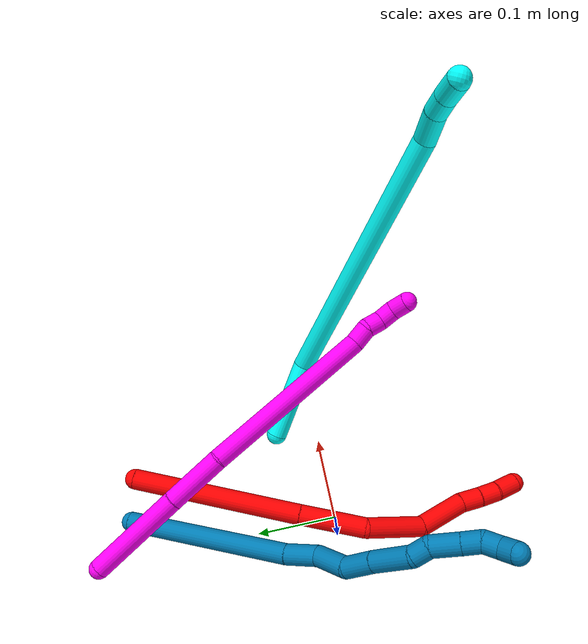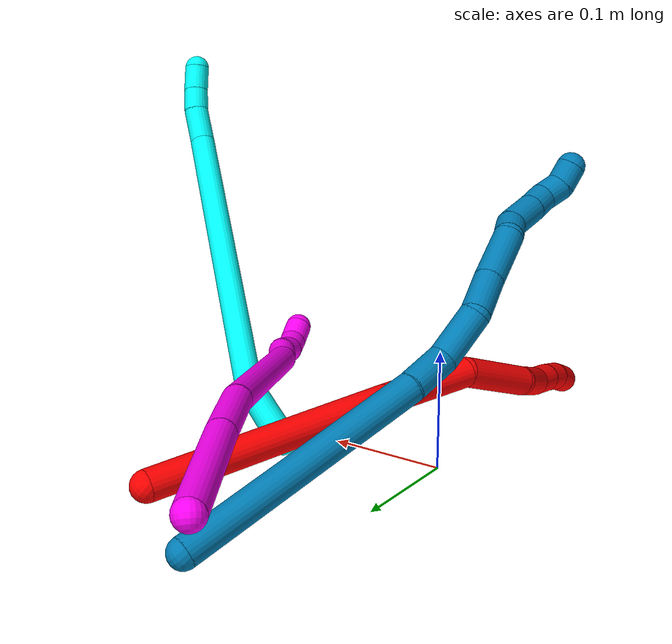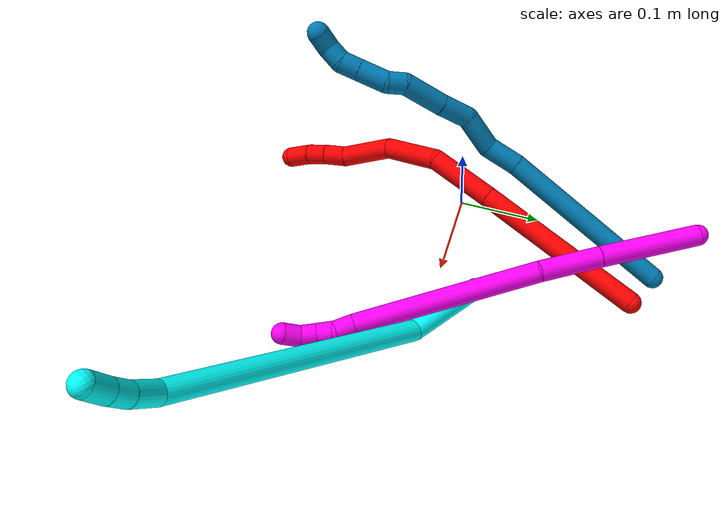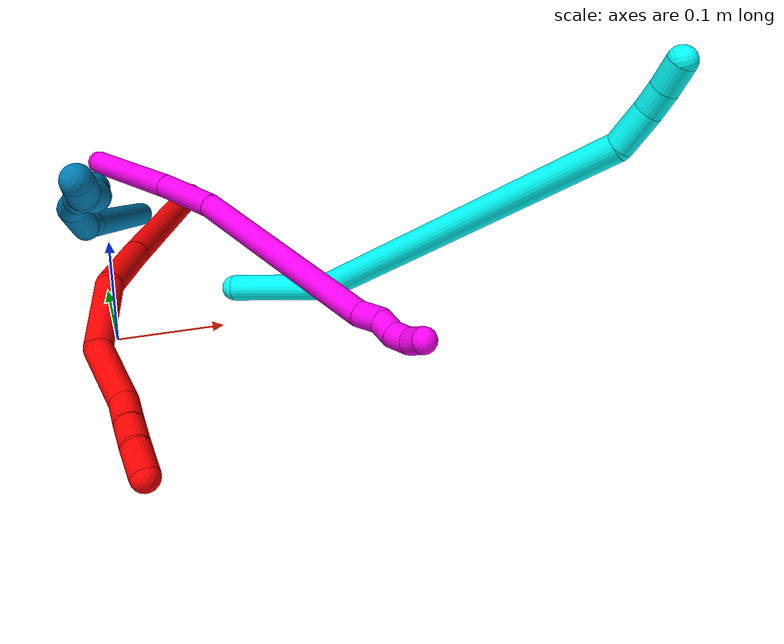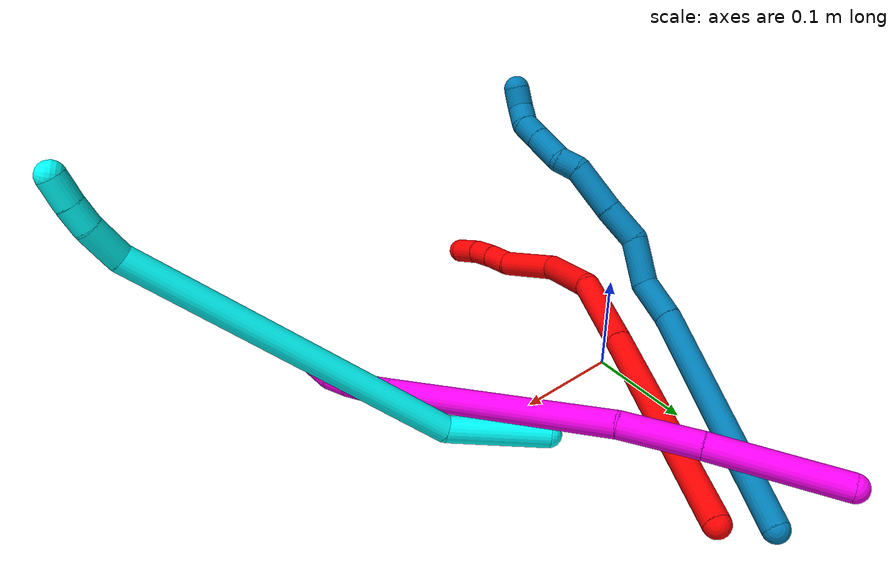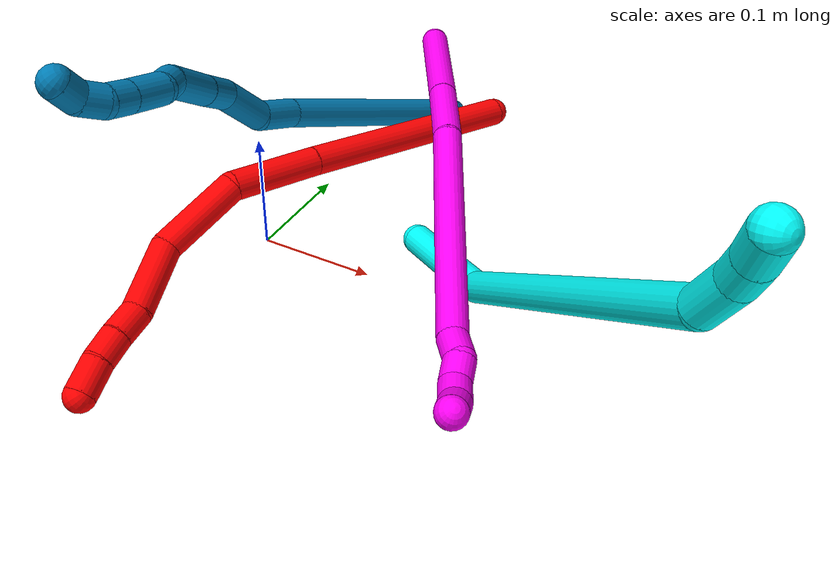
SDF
<sdf version="1.7">
 <world name="default">
  <model name="2">
   <static>0</static>
   <link name="2">
    <collision name="collision-cylinder-e_1_1_4">
     <pose>0.015742 -0.087535 0.054325 1.01536 0.151625 0.084464</pose>
     <geometry><cylinder><radius>0.0125</radius><length>0.208435</length></cylinder></geometry>
     <surface>
      <friction><ode><mu>1.16</mu><mu2>1.16</mu2><slip1>0</slip1><slip2>0</slip2></ode></friction>
      <contact><ode><kp>1e+06</kp><kd>1</kd><max_vel>0</max_vel><min_depth>0.001</min_depth></ode></contact>
     </surface>
    </collision>
    <visual name="visual-cylinder-e_1_1_4">
     <pose>0.015742 -0.087535 0.054325 1.01536 0.151625 0.084464</pose>
     <geometry><cylinder><radius>0.0125</radius><length>0.208435</length></cylinder></geometry>
     <material><ambient>1 0 0 1</ambient></material>
    </visual>
    <collision name="collision-cylinder-e_2_4_5">
     <pose>0.03666 -0.208575 0.130108 1.00117 0.129396 0.070857</pose>
     <geometry><cylinder><radius>0.0125</radius><length>0.080248</length></cylinder></geometry>
     <surface>
      <friction><ode><mu>1.16</mu><mu2>1.16</mu2><slip1>0</slip1><slip2>0</slip2></ode></friction>
      <contact><ode><kp>1e+06</kp><kd>1</kd><max_vel>0</max_vel><min_depth>0.001</min_depth></ode></contact>
     </surface>
    </collision>
    <visual name="visual-cylinder-e_2_4_5">
     <pose>0.03666 -0.208575 0.130108 1.00117 0.129396 0.070857</pose>
     <geometry><cylinder><radius>0.0125</radius><length>0.080248</length></cylinder></geometry>
     <material><ambient>1 0 0 1</ambient></material>
    </visual>
    <collision name="collision-cylinder-e_3_5_6">
     <pose>0.032742 -0.266577 0.177069 0.76525 -0.251779 -0.101781</pose>
     <geometry><cylinder><radius>0.0125</radius><length>0.073024</length></cylinder></geometry>
     <surface>
      <friction><ode><mu>1.16</mu><mu2>1.16</mu2><slip1>0</slip1><slip2>0</slip2></ode></friction>
      <contact><ode><kp>1e+06</kp><kd>1</kd><max_vel>0</max_vel><min_depth>0.001</min_depth></ode></contact>
     </surface>
    </collision>
    <visual name="visual-cylinder-e_3_5_6">
     <pose>0.032742 -0.266577 0.177069 0.76525 -0.251779 -0.101781</pose>
     <geometry><cylinder><radius>0.0125</radius><length>0.073024</length></cylinder></geometry>
     <material><ambient>1 0 0 1</ambient></material>
    </visual>
    <collision name="collision-cylinder-e_4_6_7">
     <pose>0.005946 -0.312896 0.21393 1.09092 -0.623635 -0.386353</pose>
     <geometry><cylinder><radius>0.0125</radius><length>0.060616</length></cylinder></geometry>
     <surface>
      <friction><ode><mu>1.16</mu><mu2>1.16</mu2><slip1>0</slip1><slip2>0</slip2></ode></friction>
      <contact><ode><kp>1e+06</kp><kd>1</kd><max_vel>0</max_vel><min_depth>0.001</min_depth></ode></contact>
     </surface>
    </collision>
    <visual name="visual-cylinder-e_4_6_7">
     <pose>0.005946 -0.312896 0.21393 1.09092 -0.623635 -0.386353</pose>
     <geometry><cylinder><radius>0.0125</radius><length>0.060616</length></cylinder></geometry>
     <material><ambient>1 0 0 1</ambient></material>
    </visual>
    <collision name="collision-cylinder-e_5_7_8">
     <pose>-0.016305 -0.345389 0.230735 1.0988 -0.363103 -0.223857</pose>
     <geometry><cylinder><radius>0.0125</radius><length>0.025628</length></cylinder></geometry>
     <surface>
      <friction><ode><mu>1.16</mu><mu2>1.16</mu2><slip1>0</slip1><slip2>0</slip2></ode></friction>
      <contact><ode><kp>1e+06</kp><kd>1</kd><max_vel>0</max_vel><min_depth>0.001</min_depth></ode></contact>
     </surface>
    </collision>
    <visual name="visual-cylinder-e_5_7_8">
     <pose>-0.016305 -0.345389 0.230735 1.0988 -0.363103 -0.223857</pose>
     <geometry><cylinder><radius>0.0125</radius><length>0.025628</length></cylinder></geometry>
     <material><ambient>1 0 0 1</ambient></material>
    </visual>
    <collision name="collision-cylinder-e_6_8_9">
     <pose>-0.02593 -0.365451 0.241499 1.05568 -0.439422 -0.25894</pose>
     <geometry><cylinder><radius>0.0125</radius><length>0.023854</length></cylinder></geometry>
     <surface>
      <friction><ode><mu>1.16</mu><mu2>1.16</mu2><slip1>0</slip1><slip2>0</slip2></ode></friction>
      <contact><ode><kp>1e+06</kp><kd>1</kd><max_vel>0</max_vel><min_depth>0.001</min_depth></ode></contact>
     </surface>
    </collision>
    <visual name="visual-cylinder-e_6_8_9">
     <pose>-0.02593 -0.365451 0.241499 1.05568 -0.439422 -0.25894</pose>
     <geometry><cylinder><radius>0.0125</radius><length>0.023854</length></cylinder></geometry>
     <material><ambient>1 0 0 1</ambient></material>
    </visual>
    <collision name="collision-cylinder-e_7_9_2">
     <pose>-0.038757 -0.384471 0.253595 0.957275 -0.582341 -0.308533</pose>
     <geometry><cylinder><radius>0.0125</radius><length>0.028194</length></cylinder></geometry>
     <surface>
      <friction><ode><mu>1.16</mu><mu2>1.16</mu2><slip1>0</slip1><slip2>0</slip2></ode></friction>
      <contact><ode><kp>1e+06</kp><kd>1</kd><max_vel>0</max_vel><min_depth>0.001</min_depth></ode></contact>
     </surface>
    </collision>
    <visual name="visual-cylinder-e_7_9_2">
     <pose>-0.038757 -0.384471 0.253595 0.957275 -0.582341 -0.308533</pose>
     <geometry><cylinder><radius>0.0125</radius><length>0.028194</length></cylinder></geometry>
     <material><ambient>1 0 0 1</ambient></material>
    </visual>
    <collision name="collision-sphere-2">
     <pose>-0.04651 -0.394097 0.260373 0 -0 0</pose>
     <geometry><sphere><radius>0.0125</radius></sphere></geometry>
     <surface>
      <friction><ode><mu>1.16</mu><mu2>1.16</mu2><slip1>0</slip1><slip2>0</slip2></ode></friction>
      <contact><ode><kp>1e+06</kp><kd>1</kd><max_vel>0</max_vel><min_depth>0.001</min_depth></ode></contact>
     </surface>
    </collision>
    <visual name="visual-sphere-2">
     <pose>-0.04651 -0.394097 0.260373 0 -0 0</pose>
     <geometry><sphere><radius>0.0125</radius></sphere></geometry>
     <material><ambient>1 0 0 1</ambient></material>
    </visual>
    <collision name="collision-sphere-9">
     <pose>-0.031004 -0.374845 0.246816 0 -0 0</pose>
     <geometry><sphere><radius>0.0125</radius></sphere></geometry>
     <surface>
      <friction><ode><mu>1.16</mu><mu2>1.16</mu2><slip1>0</slip1><slip2>0</slip2></ode></friction>
      <contact><ode><kp>1e+06</kp><kd>1</kd><max_vel>0</max_vel><min_depth>0.001</min_depth></ode></contact>
     </surface>
    </collision>
    <visual name="visual-sphere-9">
     <pose>-0.031004 -0.374845 0.246816 0 -0 0</pose>
     <geometry><sphere><radius>0.0125</radius></sphere></geometry>
     <material><ambient>1 0 0 1</ambient></material>
    </visual>
    <collision name="collision-sphere-4">
     <pose>0.031483 -0.175069 0.108649 0 -0 0</pose>
     <geometry><sphere><radius>0.0125</radius></sphere></geometry>
     <surface>
      <friction><ode><mu>1.16</mu><mu2>1.16</mu2><slip1>0</slip1><slip2>0</slip2></ode></friction>
      <contact><ode><kp>1e+06</kp><kd>1</kd><max_vel>0</max_vel><min_depth>0.001</min_depth></ode></contact>
     </surface>
    </collision>
    <visual name="visual-sphere-4">
     <pose>0.031483 -0.175069 0.108649 0 -0 0</pose>
     <geometry><sphere><radius>0.0125</radius></sphere></geometry>
     <material><ambient>1 0 0 1</ambient></material>
    </visual>
    <collision name="collision-sphere-1">
     <geometry><sphere><radius>0.0125</radius></sphere></geometry>
     <surface>
      <friction><ode><mu>1.16</mu><mu2>1.16</mu2><slip1>0</slip1><slip2>0</slip2></ode></friction>
      <contact><ode><kp>1e+06</kp><kd>1</kd><max_vel>0</max_vel><min_depth>0.001</min_depth></ode></contact>
     </surface>
    </collision>
    <visual name="visual-sphere-1">
     <geometry><sphere><radius>0.0125</radius></sphere></geometry>
     <material><ambient>1 0 0 1</ambient></material>
    </visual>
    <collision name="collision-sphere-8">
     <pose>-0.020856 -0.356058 0.236181 0 -0 0</pose>
     <geometry><sphere><radius>0.0125</radius></sphere></geometry>
     <surface>
      <friction><ode><mu>1.16</mu><mu2>1.16</mu2><slip1>0</slip1><slip2>0</slip2></ode></friction>
      <contact><ode><kp>1e+06</kp><kd>1</kd><max_vel>0</max_vel><min_depth>0.001</min_depth></ode></contact>
     </surface>
    </collision>
    <visual name="visual-sphere-8">
     <pose>-0.020856 -0.356058 0.236181 0 -0 0</pose>
     <geometry><sphere><radius>0.0125</radius></sphere></geometry>
     <material><ambient>1 0 0 1</ambient></material>
    </visual>
    <collision name="collision-sphere-5">
     <pose>0.041838 -0.242082 0.151566 0 -0 0</pose>
     <geometry><sphere><radius>0.0125</radius></sphere></geometry>
     <surface>
      <friction><ode><mu>1.16</mu><mu2>1.16</mu2><slip1>0</slip1><slip2>0</slip2></ode></friction>
      <contact><ode><kp>1e+06</kp><kd>1</kd><max_vel>0</max_vel><min_depth>0.001</min_depth></ode></contact>
     </surface>
    </collision>
    <visual name="visual-sphere-5">
     <pose>0.041838 -0.242082 0.151566 0 -0 0</pose>
     <geometry><sphere><radius>0.0125</radius></sphere></geometry>
     <material><ambient>1 0 0 1</ambient></material>
    </visual>
    <collision name="collision-sphere-6">
     <pose>0.023646 -0.291072 0.202572 0 -0 0</pose>
     <geometry><sphere><radius>0.0125</radius></sphere></geometry>
     <surface>
      <friction><ode><mu>1.16</mu><mu2>1.16</mu2><slip1>0</slip1><slip2>0</slip2></ode></friction>
      <contact><ode><kp>1e+06</kp><kd>1</kd><max_vel>0</max_vel><min_depth>0.001</min_depth></ode></contact>
     </surface>
    </collision>
    <visual name="visual-sphere-6">
     <pose>0.023646 -0.291072 0.202572 0 -0 0</pose>
     <geometry><sphere><radius>0.0125</radius></sphere></geometry>
     <material><ambient>1 0 0 1</ambient></material>
    </visual>
    <collision name="collision-sphere-7">
     <pose>-0.011754 -0.33472 0.225289 0 -0 0</pose>
     <geometry><sphere><radius>0.0125</radius></sphere></geometry>
     <surface>
      <friction><ode><mu>1.16</mu><mu2>1.16</mu2><slip1>0</slip1><slip2>0</slip2></ode></friction>
      <contact><ode><kp>1e+06</kp><kd>1</kd><max_vel>0</max_vel><min_depth>0.001</min_depth></ode></contact>
     </surface>
    </collision>
    <visual name="visual-sphere-7">
     <pose>-0.011754 -0.33472 0.225289 0 -0 0</pose>
     <geometry><sphere><radius>0.0125</radius></sphere></geometry>
     <material><ambient>1 0 0 1</ambient></material>
    </visual>
    <inertial>
     <pose>0.01369 -0.203651 0.132972 0 -0 0</pose>
     <mass>0.5</mass>
     <inertia>
      <ixx>0.000905</ixx>
      <ixy>0</ixy>
      <ixz>0</ixz>
      <iyy>0.000502</iyy>
      <iyz>0</iyz>
      <izz>0.000647</izz>
     </inertia>
    </inertial>
   </link>
   <pose>0.107021 0.229578 0.041486 -2.55559 -0.722865 2.83294</pose>
  </model>
  <model name="3">
   <static>0</static>
   <link name="3">
    <collision name="collision-cylinder-e_1_1_4">
     <pose>0.003301 0.006197 0.047684 -0.129226 0.068551 -0.004437</pose>
     <geometry><cylinder><radius>0.0125</radius><length>0.096397</length></cylinder></geometry>
     <surface>
      <friction><ode><mu>1.16</mu><mu2>1.16</mu2><slip1>0</slip1><slip2>0</slip2></ode></friction>
      <contact><ode><kp>1e+06</kp><kd>1</kd><max_vel>0</max_vel><min_depth>0.001</min_depth></ode></contact>
     </surface>
    </collision>
    <visual name="visual-cylinder-e_1_1_4">
     <pose>0.003301 0.006197 0.047684 -0.129226 0.068551 -0.004437</pose>
     <geometry><cylinder><radius>0.0125</radius><length>0.096397</length></cylinder></geometry>
     <material><ambient>0.003922 1 0.996078 1</ambient></material>
    </visual>
    <collision name="collision-cylinder-e_2_4_5">
     <pose>0.04785 -0.032996 0.242217 0.299776 0.262176 0.039817</pose>
     <geometry><cylinder><radius>0.0125</radius><length>0.318282</length></cylinder></geometry>
     <surface>
      <friction><ode><mu>1.16</mu><mu2>1.16</mu2><slip1>0</slip1><slip2>0</slip2></ode></friction>
      <contact><ode><kp>1e+06</kp><kd>1</kd><max_vel>0</max_vel><min_depth>0.001</min_depth></ode></contact>
     </surface>
    </collision>
    <visual name="visual-cylinder-e_2_4_5">
     <pose>0.04785 -0.032996 0.242217 0.299776 0.262176 0.039817</pose>
     <geometry><cylinder><radius>0.0125</radius><length>0.318282</length></cylinder></geometry>
     <material><ambient>0.003922 1 0.996078 1</ambient></material>
    </visual>
    <collision name="collision-cylinder-e_3_5_6">
     <pose>0.092583 -0.090432 0.402486 0.731482 0.190981 0.073331</pose>
     <geometry><cylinder><radius>0.0125</radius><length>0.036735</length></cylinder></geometry>
     <surface>
      <friction><ode><mu>1.16</mu><mu2>1.16</mu2><slip1>0</slip1><slip2>0</slip2></ode></friction>
      <contact><ode><kp>1e+06</kp><kd>1</kd><max_vel>0</max_vel><min_depth>0.001</min_depth></ode></contact>
     </surface>
    </collision>
    <visual name="visual-cylinder-e_3_5_6">
     <pose>0.092583 -0.090432 0.402486 0.731482 0.190981 0.073331</pose>
     <geometry><cylinder><radius>0.0125</radius><length>0.036735</length></cylinder></geometry>
     <material><ambient>0.003922 1 0.996078 1</ambient></material>
    </visual>
    <collision name="collision-cylinder-e_4_6_7">
     <pose>0.099973 -0.110124 0.423342 0.799324 0.350879 0.14947</pose>
     <geometry><cylinder><radius>0.0125</radius><length>0.022716</length></cylinder></geometry>
     <surface>
      <friction><ode><mu>1.16</mu><mu2>1.16</mu2><slip1>0</slip1><slip2>0</slip2></ode></friction>
      <contact><ode><kp>1e+06</kp><kd>1</kd><max_vel>0</max_vel><min_depth>0.001</min_depth></ode></contact>
     </surface>
    </collision>
    <visual name="visual-cylinder-e_4_6_7">
     <pose>0.099973 -0.110124 0.423342 0.799324 0.350879 0.14947</pose>
     <geometry><cylinder><radius>0.0125</radius><length>0.022716</length></cylinder></geometry>
     <material><ambient>0.003922 1 0.996078 1</ambient></material>
    </visual>
    <collision name="collision-cylinder-e_5_7_2">
     <pose>0.108945 -0.126839 0.438485 0.866414 0.402526 0.18817</pose>
     <geometry><cylinder><radius>0.0125</radius><length>0.02587</length></cylinder></geometry>
     <surface>
      <friction><ode><mu>1.16</mu><mu2>1.16</mu2><slip1>0</slip1><slip2>0</slip2></ode></friction>
      <contact><ode><kp>1e+06</kp><kd>1</kd><max_vel>0</max_vel><min_depth>0.001</min_depth></ode></contact>
     </surface>
    </collision>
    <visual name="visual-cylinder-e_5_7_2">
     <pose>0.108945 -0.126839 0.438485 0.866414 0.402526 0.18817</pose>
     <geometry><cylinder><radius>0.0125</radius><length>0.02587</length></cylinder></geometry>
     <material><ambient>0.003922 1 0.996078 1</ambient></material>
    </visual>
    <collision name="collision-sphere-2">
     <pose>0.114012 -0.135907 0.446192 0 -0 0</pose>
     <geometry><sphere><radius>0.0125</radius></sphere></geometry>
     <surface>
      <friction><ode><mu>1.16</mu><mu2>1.16</mu2><slip1>0</slip1><slip2>0</slip2></ode></friction>
      <contact><ode><kp>1e+06</kp><kd>1</kd><max_vel>0</max_vel><min_depth>0.001</min_depth></ode></contact>
     </surface>
    </collision>
    <visual name="visual-sphere-2">
     <pose>0.114012 -0.135907 0.446192 0 -0 0</pose>
     <geometry><sphere><radius>0.0125</radius></sphere></geometry>
     <material><ambient>0.003922 1 0.996078 1</ambient></material>
    </visual>
    <collision name="collision-sphere-7">
     <pose>0.103877 -0.11777 0.430778 0 -0 0</pose>
     <geometry><sphere><radius>0.0125</radius></sphere></geometry>
     <surface>
      <friction><ode><mu>1.16</mu><mu2>1.16</mu2><slip1>0</slip1><slip2>0</slip2></ode></friction>
      <contact><ode><kp>1e+06</kp><kd>1</kd><max_vel>0</max_vel><min_depth>0.001</min_depth></ode></contact>
     </surface>
    </collision>
    <visual name="visual-sphere-7">
     <pose>0.103877 -0.11777 0.430778 0 -0 0</pose>
     <geometry><sphere><radius>0.0125</radius></sphere></geometry>
     <material><ambient>0.003922 1 0.996078 1</ambient></material>
    </visual>
    <collision name="collision-sphere-6">
     <pose>0.096069 -0.102477 0.415906 0 -0 0</pose>
     <geometry><sphere><radius>0.0125</radius></sphere></geometry>
     <surface>
      <friction><ode><mu>1.16</mu><mu2>1.16</mu2><slip1>0</slip1><slip2>0</slip2></ode></friction>
      <contact><ode><kp>1e+06</kp><kd>1</kd><max_vel>0</max_vel><min_depth>0.001</min_depth></ode></contact>
     </surface>
    </collision>
    <visual name="visual-sphere-6">
     <pose>0.096069 -0.102477 0.415906 0 -0 0</pose>
     <geometry><sphere><radius>0.0125</radius></sphere></geometry>
     <material><ambient>0.003922 1 0.996078 1</ambient></material>
    </visual>
    <collision name="collision-sphere-5">
     <pose>0.089096 -0.078386 0.389066 0 -0 0</pose>
     <geometry><sphere><radius>0.0125</radius></sphere></geometry>
     <surface>
      <friction><ode><mu>1.16</mu><mu2>1.16</mu2><slip1>0</slip1><slip2>0</slip2></ode></friction>
      <contact><ode><kp>1e+06</kp><kd>1</kd><max_vel>0</max_vel><min_depth>0.001</min_depth></ode></contact>
     </surface>
    </collision>
    <visual name="visual-sphere-5">
     <pose>0.089096 -0.078386 0.389066 0 -0 0</pose>
     <geometry><sphere><radius>0.0125</radius></sphere></geometry>
     <material><ambient>0.003922 1 0.996078 1</ambient></material>
    </visual>
    <collision name="collision-sphere-1">
     <geometry><sphere><radius>0.0125</radius></sphere></geometry>
     <surface>
      <friction><ode><mu>1.16</mu><mu2>1.16</mu2><slip1>0</slip1><slip2>0</slip2></ode></friction>
      <contact><ode><kp>1e+06</kp><kd>1</kd><max_vel>0</max_vel><min_depth>0.001</min_depth></ode></contact>
     </surface>
    </collision>
    <visual name="visual-sphere-1">
     <geometry><sphere><radius>0.0125</radius></sphere></geometry>
     <material><ambient>0.003922 1 0.996078 1</ambient></material>
    </visual>
    <collision name="collision-sphere-4">
     <pose>0.006603 0.012393 0.095369 0 -0 0</pose>
     <geometry><sphere><radius>0.0125</radius></sphere></geometry>
     <surface>
      <friction><ode><mu>1.16</mu><mu2>1.16</mu2><slip1>0</slip1><slip2>0</slip2></ode></friction>
      <contact><ode><kp>1e+06</kp><kd>1</kd><max_vel>0</max_vel><min_depth>0.001</min_depth></ode></contact>
     </surface>
    </collision>
    <visual name="visual-sphere-4">
     <pose>0.006603 0.012393 0.095369 0 -0 0</pose>
     <geometry><sphere><radius>0.0125</radius></sphere></geometry>
     <material><ambient>0.003922 1 0.996078 1</ambient></material>
    </visual>
    <inertial>
     <pose>0.048077 -0.038019 0.234871 0 -0 0</pose>
     <mass>0.5</mass>
     <inertia>
      <ixx>0.002806</ixx>
      <ixy>0</ixy>
      <ixz>0</ixz>
      <iyy>0.002764</iyy>
      <iyz>0</iyz>
      <izz>9.4e-05</izz>
     </inertia>
    </inertial>
   </link>
   <pose>0.121682 0.049462 0.012382 -1.28478 -0.236133 -2.12658</pose>
  </model>
  <model name="9">
   <static>0</static>
   <link name="9">
    <collision name="collision-cylinder-e_1_1_4">
     <pose>-0.022224 -0.102723 -0.019917 1.76231 -0.209286 -0.253329</pose>
     <geometry><cylinder><radius>0.0125</radius><length>0.213941</length></cylinder></geometry>
     <surface>
      <friction><ode><mu>1.16</mu><mu2>1.16</mu2><slip1>0</slip1><slip2>0</slip2></ode></friction>
      <contact><ode><kp>1e+06</kp><kd>1</kd><max_vel>0</max_vel><min_depth>0.001</min_depth></ode></contact>
     </surface>
    </collision>
    <visual name="visual-cylinder-e_1_1_4">
     <pose>-0.022224 -0.102723 -0.019917 1.76231 -0.209286 -0.253329</pose>
     <geometry><cylinder><radius>0.0125</radius><length>0.213941</length></cylinder></geometry>
     <material><ambient>0 0.490196 0.709804 1</ambient></material>
    </visual>
    <collision name="collision-cylinder-e_2_4_5">
     <pose>-0.046033 -0.225072 -0.042212 1.69134 -0.079981 -0.09024</pose>
     <geometry><cylinder><radius>0.0125</radius><length>0.039664</length></cylinder></geometry>
     <surface>
      <friction><ode><mu>1.16</mu><mu2>1.16</mu2><slip1>0</slip1><slip2>0</slip2></ode></friction>
      <contact><ode><kp>1e+06</kp><kd>1</kd><max_vel>0</max_vel><min_depth>0.001</min_depth></ode></contact>
     </surface>
    </collision>
    <visual name="visual-cylinder-e_2_4_5">
     <pose>-0.046033 -0.225072 -0.042212 1.69134 -0.079981 -0.09024</pose>
     <geometry><cylinder><radius>0.0125</radius><length>0.039664</length></cylinder></geometry>
     <material><ambient>0 0.490196 0.709804 1</ambient></material>
    </visual>
    <collision name="collision-cylinder-e_3_5_6">
     <pose>-0.057121 -0.264173 -0.040982 1.38766 -0.44734 -0.374007</pose>
     <geometry><cylinder><radius>0.0125</radius><length>0.04394</length></cylinder></geometry>
     <surface>
      <friction><ode><mu>1.16</mu><mu2>1.16</mu2><slip1>0</slip1><slip2>0</slip2></ode></friction>
      <contact><ode><kp>1e+06</kp><kd>1</kd><max_vel>0</max_vel><min_depth>0.001</min_depth></ode></contact>
     </surface>
    </collision>
    <visual name="visual-cylinder-e_3_5_6">
     <pose>-0.057121 -0.264173 -0.040982 1.38766 -0.44734 -0.374007</pose>
     <geometry><cylinder><radius>0.0125</radius><length>0.04394</length></cylinder></geometry>
     <material><ambient>0 0.490196 0.709804 1</ambient></material>
    </visual>
    <collision name="collision-cylinder-e_4_6_7">
     <pose>-0.065969 -0.301749 -0.033069 1.33722 0.035252 0.02785</pose>
     <geometry><cylinder><radius>0.0125</radius><length>0.03723</length></cylinder></geometry>
     <surface>
      <friction><ode><mu>1.16</mu><mu2>1.16</mu2><slip1>0</slip1><slip2>0</slip2></ode></friction>
      <contact><ode><kp>1e+06</kp><kd>1</kd><max_vel>0</max_vel><min_depth>0.001</min_depth></ode></contact>
     </surface>
    </collision>
    <visual name="visual-cylinder-e_4_6_7">
     <pose>-0.065969 -0.301749 -0.033069 1.33722 0.035252 0.02785</pose>
     <geometry><cylinder><radius>0.0125</radius><length>0.03723</length></cylinder></geometry>
     <material><ambient>0 0.490196 0.709804 1</ambient></material>
    </visual>
    <collision name="collision-cylinder-e_5_7_8">
     <pose>-0.065991 -0.34375 -0.023504 1.35425 -0.027728 -0.022291</pose>
     <geometry><cylinder><radius>0.0125</radius><length>0.048967</length></cylinder></geometry>
     <surface>
      <friction><ode><mu>1.16</mu><mu2>1.16</mu2><slip1>0</slip1><slip2>0</slip2></ode></friction>
      <contact><ode><kp>1e+06</kp><kd>1</kd><max_vel>0</max_vel><min_depth>0.001</min_depth></ode></contact>
     </surface>
    </collision>
    <visual name="visual-cylinder-e_5_7_8">
     <pose>-0.065991 -0.34375 -0.023504 1.35425 -0.027728 -0.022291</pose>
     <geometry><cylinder><radius>0.0125</radius><length>0.048967</length></cylinder></geometry>
     <material><ambient>0 0.490196 0.709804 1</ambient></material>
    </visual>
    <collision name="collision-cylinder-e_6_8_9">
     <pose>-0.062557 -0.377225 -0.016938 1.43503 0.402459 0.352346</pose>
     <geometry><cylinder><radius>0.0125</radius><length>0.021002</length></cylinder></geometry>
     <surface>
      <friction><ode><mu>1.16</mu><mu2>1.16</mu2><slip1>0</slip1><slip2>0</slip2></ode></friction>
      <contact><ode><kp>1e+06</kp><kd>1</kd><max_vel>0</max_vel><min_depth>0.001</min_depth></ode></contact>
     </surface>
    </collision>
    <visual name="visual-cylinder-e_6_8_9">
     <pose>-0.062557 -0.377225 -0.016938 1.43503 0.402459 0.352346</pose>
     <geometry><cylinder><radius>0.0125</radius><length>0.021002</length></cylinder></geometry>
     <material><ambient>0 0.490196 0.709804 1</ambient></material>
    </visual>
    <collision name="collision-cylinder-e_7_9_10">
     <pose>-0.057397 -0.403352 -0.018106 1.71923 0.062499 0.072531</pose>
     <geometry><cylinder><radius>0.0125</radius><length>0.033542</length></cylinder></geometry>
     <surface>
      <friction><ode><mu>1.16</mu><mu2>1.16</mu2><slip1>0</slip1><slip2>0</slip2></ode></friction>
      <contact><ode><kp>1e+06</kp><kd>1</kd><max_vel>0</max_vel><min_depth>0.001</min_depth></ode></contact>
     </surface>
    </collision>
    <visual name="visual-cylinder-e_7_9_10">
     <pose>-0.057397 -0.403352 -0.018106 1.71923 0.062499 0.072531</pose>
     <geometry><cylinder><radius>0.0125</radius><length>0.033542</length></cylinder></geometry>
     <material><ambient>0 0.490196 0.709804 1</ambient></material>
    </visual>
    <collision name="collision-cylinder-e_8_10_11">
     <pose>-0.055685 -0.430678 -0.02162 1.66695 0.061312 0.067505</pose>
     <geometry><cylinder><radius>0.0125</radius><length>0.021684</length></cylinder></geometry>
     <surface>
      <friction><ode><mu>1.16</mu><mu2>1.16</mu2><slip1>0</slip1><slip2>0</slip2></ode></friction>
      <contact><ode><kp>1e+06</kp><kd>1</kd><max_vel>0</max_vel><min_depth>0.001</min_depth></ode></contact>
     </surface>
    </collision>
    <visual name="visual-cylinder-e_8_10_11">
     <pose>-0.055685 -0.430678 -0.02162 1.66695 0.061312 0.067505</pose>
     <geometry><cylinder><radius>0.0125</radius><length>0.021684</length></cylinder></geometry>
     <material><ambient>0 0.490196 0.709804 1</ambient></material>
    </visual>
    <collision name="collision-cylinder-e_9_11_12">
     <pose>-0.058622 -0.450615 -0.024471 1.76603 -0.367924 -0.445416</pose>
     <geometry><cylinder><radius>0.0125</radius><length>0.020026</length></cylinder></geometry>
     <surface>
      <friction><ode><mu>1.16</mu><mu2>1.16</mu2><slip1>0</slip1><slip2>0</slip2></ode></friction>
      <contact><ode><kp>1e+06</kp><kd>1</kd><max_vel>0</max_vel><min_depth>0.001</min_depth></ode></contact>
     </surface>
    </collision>
    <visual name="visual-cylinder-e_9_11_12">
     <pose>-0.058622 -0.450615 -0.024471 1.76603 -0.367924 -0.445416</pose>
     <geometry><cylinder><radius>0.0125</radius><length>0.020026</length></cylinder></geometry>
     <material><ambient>0 0.490196 0.709804 1</ambient></material>
    </visual>
    <collision name="collision-cylinder-e_10_12_2">
     <pose>-0.066676 -0.468285 -0.023475 1.25185 -0.461315 -0.336318</pose>
     <geometry><cylinder><radius>0.0125</radius><length>0.020005</length></cylinder></geometry>
     <surface>
      <friction><ode><mu>1.16</mu><mu2>1.16</mu2><slip1>0</slip1><slip2>0</slip2></ode></friction>
      <contact><ode><kp>1e+06</kp><kd>1</kd><max_vel>0</max_vel><min_depth>0.001</min_depth></ode></contact>
     </surface>
    </collision>
    <visual name="visual-cylinder-e_10_12_2">
     <pose>-0.066676 -0.468285 -0.023475 1.25185 -0.461315 -0.336318</pose>
     <geometry><cylinder><radius>0.0125</radius><length>0.020005</length></cylinder></geometry>
     <material><ambient>0 0.490196 0.709804 1</ambient></material>
    </visual>
    <collision name="collision-sphere-2">
     <pose>-0.071128 -0.47679 -0.020667 0 -0 0</pose>
     <geometry><sphere><radius>0.0125</radius></sphere></geometry>
     <surface>
      <friction><ode><mu>1.16</mu><mu2>1.16</mu2><slip1>0</slip1><slip2>0</slip2></ode></friction>
      <contact><ode><kp>1e+06</kp><kd>1</kd><max_vel>0</max_vel><min_depth>0.001</min_depth></ode></contact>
     </surface>
    </collision>
    <visual name="visual-sphere-2">
     <pose>-0.071128 -0.47679 -0.020667 0 -0 0</pose>
     <geometry><sphere><radius>0.0125</radius></sphere></geometry>
     <material><ambient>0 0.490196 0.709804 1</ambient></material>
    </visual>
    <collision name="collision-sphere-12">
     <pose>-0.062223 -0.45978 -0.026284 0 -0 0</pose>
     <geometry><sphere><radius>0.0125</radius></sphere></geometry>
     <surface>
      <friction><ode><mu>1.16</mu><mu2>1.16</mu2><slip1>0</slip1><slip2>0</slip2></ode></friction>
      <contact><ode><kp>1e+06</kp><kd>1</kd><max_vel>0</max_vel><min_depth>0.001</min_depth></ode></contact>
     </surface>
    </collision>
    <visual name="visual-sphere-12">
     <pose>-0.062223 -0.45978 -0.026284 0 -0 0</pose>
     <geometry><sphere><radius>0.0125</radius></sphere></geometry>
     <material><ambient>0 0.490196 0.709804 1</ambient></material>
    </visual>
    <collision name="collision-sphere-11">
     <pose>-0.05502 -0.44145 -0.022659 0 -0 0</pose>
     <geometry><sphere><radius>0.0125</radius></sphere></geometry>
     <surface>
      <friction><ode><mu>1.16</mu><mu2>1.16</mu2><slip1>0</slip1><slip2>0</slip2></ode></friction>
      <contact><ode><kp>1e+06</kp><kd>1</kd><max_vel>0</max_vel><min_depth>0.001</min_depth></ode></contact>
     </surface>
    </collision>
    <visual name="visual-sphere-11">
     <pose>-0.05502 -0.44145 -0.022659 0 -0 0</pose>
     <geometry><sphere><radius>0.0125</radius></sphere></geometry>
     <material><ambient>0 0.490196 0.709804 1</ambient></material>
    </visual>
    <collision name="collision-sphere-10">
     <pose>-0.056349 -0.419906 -0.020581 0 -0 0</pose>
     <geometry><sphere><radius>0.0125</radius></sphere></geometry>
     <surface>
      <friction><ode><mu>1.16</mu><mu2>1.16</mu2><slip1>0</slip1><slip2>0</slip2></ode></friction>
      <contact><ode><kp>1e+06</kp><kd>1</kd><max_vel>0</max_vel><min_depth>0.001</min_depth></ode></contact>
     </surface>
    </collision>
    <visual name="visual-sphere-10">
     <pose>-0.056349 -0.419906 -0.020581 0 -0 0</pose>
     <geometry><sphere><radius>0.0125</radius></sphere></geometry>
     <material><ambient>0 0.490196 0.709804 1</ambient></material>
    </visual>
    <collision name="collision-sphere-9">
     <pose>-0.058444 -0.386798 -0.01563 0 -0 0</pose>
     <geometry><sphere><radius>0.0125</radius></sphere></geometry>
     <surface>
      <friction><ode><mu>1.16</mu><mu2>1.16</mu2><slip1>0</slip1><slip2>0</slip2></ode></friction>
      <contact><ode><kp>1e+06</kp><kd>1</kd><max_vel>0</max_vel><min_depth>0.001</min_depth></ode></contact>
     </surface>
    </collision>
    <visual name="visual-sphere-9">
     <pose>-0.058444 -0.386798 -0.01563 0 -0 0</pose>
     <geometry><sphere><radius>0.0125</radius></sphere></geometry>
     <material><ambient>0 0.490196 0.709804 1</ambient></material>
    </visual>
    <collision name="collision-sphere-4">
     <pose>-0.044449 -0.205447 -0.039835 0 -0 0</pose>
     <geometry><sphere><radius>0.0125</radius></sphere></geometry>
     <surface>
      <friction><ode><mu>1.16</mu><mu2>1.16</mu2><slip1>0</slip1><slip2>0</slip2></ode></friction>
      <contact><ode><kp>1e+06</kp><kd>1</kd><max_vel>0</max_vel><min_depth>0.001</min_depth></ode></contact>
     </surface>
    </collision>
    <visual name="visual-sphere-4">
     <pose>-0.044449 -0.205447 -0.039835 0 -0 0</pose>
     <geometry><sphere><radius>0.0125</radius></sphere></geometry>
     <material><ambient>0 0.490196 0.709804 1</ambient></material>
    </visual>
    <collision name="collision-sphere-1">
     <geometry><sphere><radius>0.0125</radius></sphere></geometry>
     <surface>
      <friction><ode><mu>1.16</mu><mu2>1.16</mu2><slip1>0</slip1><slip2>0</slip2></ode></friction>
      <contact><ode><kp>1e+06</kp><kd>1</kd><max_vel>0</max_vel><min_depth>0.001</min_depth></ode></contact>
     </surface>
    </collision>
    <visual name="visual-sphere-1">
     <geometry><sphere><radius>0.0125</radius></sphere></geometry>
     <material><ambient>0 0.490196 0.709804 1</ambient></material>
    </visual>
    <collision name="collision-sphere-8">
     <pose>-0.06667 -0.367652 -0.018246 0 -0 0</pose>
     <geometry><sphere><radius>0.0125</radius></sphere></geometry>
     <surface>
      <friction><ode><mu>1.16</mu><mu2>1.16</mu2><slip1>0</slip1><slip2>0</slip2></ode></friction>
      <contact><ode><kp>1e+06</kp><kd>1</kd><max_vel>0</max_vel><min_depth>0.001</min_depth></ode></contact>
     </surface>
    </collision>
    <visual name="visual-sphere-8">
     <pose>-0.06667 -0.367652 -0.018246 0 -0 0</pose>
     <geometry><sphere><radius>0.0125</radius></sphere></geometry>
     <material><ambient>0 0.490196 0.709804 1</ambient></material>
    </visual>
    <collision name="collision-sphere-5">
     <pose>-0.047618 -0.244697 -0.044589 0 -0 0</pose>
     <geometry><sphere><radius>0.0125</radius></sphere></geometry>
     <surface>
      <friction><ode><mu>1.16</mu><mu2>1.16</mu2><slip1>0</slip1><slip2>0</slip2></ode></friction>
      <contact><ode><kp>1e+06</kp><kd>1</kd><max_vel>0</max_vel><min_depth>0.001</min_depth></ode></contact>
     </surface>
    </collision>
    <visual name="visual-sphere-5">
     <pose>-0.047618 -0.244697 -0.044589 0 -0 0</pose>
     <geometry><sphere><radius>0.0125</radius></sphere></geometry>
     <material><ambient>0 0.490196 0.709804 1</ambient></material>
    </visual>
    <collision name="collision-sphere-6">
     <pose>-0.066625 -0.28365 -0.037375 0 -0 0</pose>
     <geometry><sphere><radius>0.0125</radius></sphere></geometry>
     <surface>
      <friction><ode><mu>1.16</mu><mu2>1.16</mu2><slip1>0</slip1><slip2>0</slip2></ode></friction>
      <contact><ode><kp>1e+06</kp><kd>1</kd><max_vel>0</max_vel><min_depth>0.001</min_depth></ode></contact>
     </surface>
    </collision>
    <visual name="visual-sphere-6">
     <pose>-0.066625 -0.28365 -0.037375 0 -0 0</pose>
     <geometry><sphere><radius>0.0125</radius></sphere></geometry>
     <material><ambient>0 0.490196 0.709804 1</ambient></material>
    </visual>
    <collision name="collision-sphere-7">
     <pose>-0.065312 -0.319847 -0.028763 0 -0 0</pose>
     <geometry><sphere><radius>0.0125</radius></sphere></geometry>
     <surface>
      <friction><ode><mu>1.16</mu><mu2>1.16</mu2><slip1>0</slip1><slip2>0</slip2></ode></friction>
      <contact><ode><kp>1e+06</kp><kd>1</kd><max_vel>0</max_vel><min_depth>0.001</min_depth></ode></contact>
     </surface>
    </collision>
    <visual name="visual-sphere-7">
     <pose>-0.065312 -0.319847 -0.028763 0 -0 0</pose>
     <geometry><sphere><radius>0.0125</radius></sphere></geometry>
     <material><ambient>0 0.490196 0.709804 1</ambient></material>
    </visual>
    <inertial>
     <pose>-0.043464 -0.239521 -0.02502 0 -0 0</pose>
     <mass>0.5</mass>
     <inertia>
      <ixx>0.000611</ixx>
      <ixy>0</ixy>
      <ixz>0</ixz>
      <iyy>-0.000347</iyy>
      <iyz>0</iyz>
      <izz>0.001008</izz>
     </inertia>
    </inertial>
   </link>
   <pose>0.052527 0.25211 0.015014 -0.496668 0.568976 -0.308044</pose>
  </model>
  <model name="10">
   <static>0</static>
   <link name="10">
    <collision name="collision-cylinder-e_1_1_4">
     <pose>0.041188 -0.029727 0.033477 0.726136 0.743751 0.294206</pose>
     <geometry><cylinder><radius>0.0125</radius><length>0.121669</length></cylinder></geometry>
     <surface>
      <friction><ode><mu>1.16</mu><mu2>1.16</mu2><slip1>0</slip1><slip2>0</slip2></ode></friction>
      <contact><ode><kp>1e+06</kp><kd>1</kd><max_vel>0</max_vel><min_depth>0.001</min_depth></ode></contact>
     </surface>
    </collision>
    <visual name="visual-cylinder-e_1_1_4">
     <pose>0.041188 -0.029727 0.033477 0.726136 0.743751 0.294206</pose>
     <geometry><cylinder><radius>0.0125</radius><length>0.121669</length></cylinder></geometry>
     <material><ambient>1 0 0.964706 1</ambient></material>
    </visual>
    <collision name="collision-cylinder-e_2_4_5">
     <pose>0.107634 -0.077686 0.0852 0.785021 0.774888 0.334716</pose>
     <geometry><cylinder><radius>0.0125</radius><length>0.072203</length></cylinder></geometry>
     <surface>
      <friction><ode><mu>1.16</mu><mu2>1.16</mu2><slip1>0</slip1><slip2>0</slip2></ode></friction>
      <contact><ode><kp>1e+06</kp><kd>1</kd><max_vel>0</max_vel><min_depth>0.001</min_depth></ode></contact>
     </surface>
    </collision>
    <visual name="visual-cylinder-e_2_4_5">
     <pose>0.107634 -0.077686 0.0852 0.785021 0.774888 0.334716</pose>
     <geometry><cylinder><radius>0.0125</radius><length>0.072203</length></cylinder></geometry>
     <material><ambient>1 0 0.964706 1</ambient></material>
    </visual>
    <collision name="collision-cylinder-e_3_5_6">
     <pose>0.215991 -0.157247 0.141813 1.01177 0.854501 0.494134</pose>
     <geometry><cylinder><radius>0.0125</radius><length>0.220351</length></cylinder></geometry>
     <surface>
      <friction><ode><mu>1.16</mu><mu2>1.16</mu2><slip1>0</slip1><slip2>0</slip2></ode></friction>
      <contact><ode><kp>1e+06</kp><kd>1</kd><max_vel>0</max_vel><min_depth>0.001</min_depth></ode></contact>
     </surface>
    </collision>
    <visual name="visual-cylinder-e_3_5_6">
     <pose>0.215991 -0.157247 0.141813 1.01177 0.854501 0.494134</pose>
     <geometry><cylinder><radius>0.0125</radius><length>0.220351</length></cylinder></geometry>
     <material><ambient>1 0 0.964706 1</ambient></material>
    </visual>
    <collision name="collision-cylinder-e_4_6_7">
     <pose>0.307934 -0.222867 0.186597 0.589358 0.853136 0.274149</pose>
     <geometry><cylinder><radius>0.0125</radius><length>0.023479</length></cylinder></geometry>
     <surface>
      <friction><ode><mu>1.16</mu><mu2>1.16</mu2><slip1>0</slip1><slip2>0</slip2></ode></friction>
      <contact><ode><kp>1e+06</kp><kd>1</kd><max_vel>0</max_vel><min_depth>0.001</min_depth></ode></contact>
     </surface>
    </collision>
    <visual name="visual-cylinder-e_4_6_7">
     <pose>0.307934 -0.222867 0.186597 0.589358 0.853136 0.274149</pose>
     <geometry><cylinder><radius>0.0125</radius><length>0.023479</length></cylinder></geometry>
     <material><ambient>1 0 0.964706 1</ambient></material>
    </visual>
    <collision name="collision-cylinder-e_5_7_8">
     <pose>0.323617 -0.234419 0.19562 1.22639 0.725288 0.521817</pose>
     <geometry><cylinder><radius>0.0125</radius><length>0.020619</length></cylinder></geometry>
     <surface>
      <friction><ode><mu>1.16</mu><mu2>1.16</mu2><slip1>0</slip1><slip2>0</slip2></ode></friction>
      <contact><ode><kp>1e+06</kp><kd>1</kd><max_vel>0</max_vel><min_depth>0.001</min_depth></ode></contact>
     </surface>
    </collision>
    <visual name="visual-cylinder-e_5_7_8">
     <pose>0.323617 -0.234419 0.19562 1.22639 0.725288 0.521817</pose>
     <geometry><cylinder><radius>0.0125</radius><length>0.020619</length></cylinder></geometry>
     <material><ambient>1 0 0.964706 1</ambient></material>
    </visual>
    <collision name="collision-cylinder-e_6_8_9">
     <pose>0.336738 -0.247224 0.204279 0.741402 0.653185 0.261796</pose>
     <geometry><cylinder><radius>0.0125</radius><length>0.020674</length></cylinder></geometry>
     <surface>
      <friction><ode><mu>1.16</mu><mu2>1.16</mu2><slip1>0</slip1><slip2>0</slip2></ode></friction>
      <contact><ode><kp>1e+06</kp><kd>1</kd><max_vel>0</max_vel><min_depth>0.001</min_depth></ode></contact>
     </surface>
    </collision>
    <visual name="visual-cylinder-e_6_8_9">
     <pose>0.336738 -0.247224 0.204279 0.741402 0.653185 0.261796</pose>
     <geometry><cylinder><radius>0.0125</radius><length>0.020674</length></cylinder></geometry>
     <material><ambient>1 0 0.964706 1</ambient></material>
    </visual>
    <collision name="collision-cylinder-e_7_9_2">
     <pose>0.345909 -0.258097 0.21891 0.555929 0.278697 0.080003</pose>
     <geometry><cylinder><radius>0.0125</radius><length>0.021005</length></cylinder></geometry>
     <surface>
      <friction><ode><mu>1.16</mu><mu2>1.16</mu2><slip1>0</slip1><slip2>0</slip2></ode></friction>
      <contact><ode><kp>1e+06</kp><kd>1</kd><max_vel>0</max_vel><min_depth>0.001</min_depth></ode></contact>
     </surface>
    </collision>
    <visual name="visual-cylinder-e_7_9_2">
     <pose>0.345909 -0.258097 0.21891 0.555929 0.278697 0.080003</pose>
     <geometry><cylinder><radius>0.0125</radius><length>0.021005</length></cylinder></geometry>
     <material><ambient>1 0 0.964706 1</ambient></material>
    </visual>
    <collision name="collision-sphere-2">
     <pose>0.348798 -0.263426 0.227487 0 -0 0</pose>
     <geometry><sphere><radius>0.0125</radius></sphere></geometry>
     <surface>
      <friction><ode><mu>1.16</mu><mu2>1.16</mu2><slip1>0</slip1><slip2>0</slip2></ode></friction>
      <contact><ode><kp>1e+06</kp><kd>1</kd><max_vel>0</max_vel><min_depth>0.001</min_depth></ode></contact>
     </surface>
    </collision>
    <visual name="visual-sphere-2">
     <pose>0.348798 -0.263426 0.227487 0 -0 0</pose>
     <geometry><sphere><radius>0.0125</radius></sphere></geometry>
     <material><ambient>1 0 0.964706 1</ambient></material>
    </visual>
    <collision name="collision-sphere-9">
     <pose>0.34302 -0.252768 0.210333 0 -0 0</pose>
     <geometry><sphere><radius>0.0125</radius></sphere></geometry>
     <surface>
      <friction><ode><mu>1.16</mu><mu2>1.16</mu2><slip1>0</slip1><slip2>0</slip2></ode></friction>
      <contact><ode><kp>1e+06</kp><kd>1</kd><max_vel>0</max_vel><min_depth>0.001</min_depth></ode></contact>
     </surface>
    </collision>
    <visual name="visual-sphere-9">
     <pose>0.34302 -0.252768 0.210333 0 -0 0</pose>
     <geometry><sphere><radius>0.0125</radius></sphere></geometry>
     <material><ambient>1 0 0.964706 1</ambient></material>
    </visual>
    <collision name="collision-sphere-4">
     <pose>0.082376 -0.059453 0.066953 0 -0 0</pose>
     <geometry><sphere><radius>0.0125</radius></sphere></geometry>
     <surface>
      <friction><ode><mu>1.16</mu><mu2>1.16</mu2><slip1>0</slip1><slip2>0</slip2></ode></friction>
      <contact><ode><kp>1e+06</kp><kd>1</kd><max_vel>0</max_vel><min_depth>0.001</min_depth></ode></contact>
     </surface>
    </collision>
    <visual name="visual-sphere-4">
     <pose>0.082376 -0.059453 0.066953 0 -0 0</pose>
     <geometry><sphere><radius>0.0125</radius></sphere></geometry>
     <material><ambient>1 0 0.964706 1</ambient></material>
    </visual>
    <collision name="collision-sphere-1">
     <geometry><sphere><radius>0.0125</radius></sphere></geometry>
     <surface>
      <friction><ode><mu>1.16</mu><mu2>1.16</mu2><slip1>0</slip1><slip2>0</slip2></ode></friction>
      <contact><ode><kp>1e+06</kp><kd>1</kd><max_vel>0</max_vel><min_depth>0.001</min_depth></ode></contact>
     </surface>
    </collision>
    <visual name="visual-sphere-1">
     <geometry><sphere><radius>0.0125</radius></sphere></geometry>
     <material><ambient>1 0 0.964706 1</ambient></material>
    </visual>
    <collision name="collision-sphere-8">
     <pose>0.330456 -0.241681 0.198224 0 -0 0</pose>
     <geometry><sphere><radius>0.0125</radius></sphere></geometry>
     <surface>
      <friction><ode><mu>1.16</mu><mu2>1.16</mu2><slip1>0</slip1><slip2>0</slip2></ode></friction>
      <contact><ode><kp>1e+06</kp><kd>1</kd><max_vel>0</max_vel><min_depth>0.001</min_depth></ode></contact>
     </surface>
    </collision>
    <visual name="visual-sphere-8">
     <pose>0.330456 -0.241681 0.198224 0 -0 0</pose>
     <geometry><sphere><radius>0.0125</radius></sphere></geometry>
     <material><ambient>1 0 0.964706 1</ambient></material>
    </visual>
    <collision name="collision-sphere-5">
     <pose>0.132892 -0.095919 0.103446 0 -0 0</pose>
     <geometry><sphere><radius>0.0125</radius></sphere></geometry>
     <surface>
      <friction><ode><mu>1.16</mu><mu2>1.16</mu2><slip1>0</slip1><slip2>0</slip2></ode></friction>
      <contact><ode><kp>1e+06</kp><kd>1</kd><max_vel>0</max_vel><min_depth>0.001</min_depth></ode></contact>
     </surface>
    </collision>
    <visual name="visual-sphere-5">
     <pose>0.132892 -0.095919 0.103446 0 -0 0</pose>
     <geometry><sphere><radius>0.0125</radius></sphere></geometry>
     <material><ambient>1 0 0.964706 1</ambient></material>
    </visual>
    <collision name="collision-sphere-6">
     <pose>0.299091 -0.218576 0.18018 0 -0 0</pose>
     <geometry><sphere><radius>0.0125</radius></sphere></geometry>
     <surface>
      <friction><ode><mu>1.16</mu><mu2>1.16</mu2><slip1>0</slip1><slip2>0</slip2></ode></friction>
      <contact><ode><kp>1e+06</kp><kd>1</kd><max_vel>0</max_vel><min_depth>0.001</min_depth></ode></contact>
     </surface>
    </collision>
    <visual name="visual-sphere-6">
     <pose>0.299091 -0.218576 0.18018 0 -0 0</pose>
     <geometry><sphere><radius>0.0125</radius></sphere></geometry>
     <material><ambient>1 0 0.964706 1</ambient></material>
    </visual>
    <collision name="collision-sphere-7">
     <pose>0.316778 -0.227158 0.193015 0 -0 0</pose>
     <geometry><sphere><radius>0.0125</radius></sphere></geometry>
     <surface>
      <friction><ode><mu>1.16</mu><mu2>1.16</mu2><slip1>0</slip1><slip2>0</slip2></ode></friction>
      <contact><ode><kp>1e+06</kp><kd>1</kd><max_vel>0</max_vel><min_depth>0.001</min_depth></ode></contact>
     </surface>
    </collision>
    <visual name="visual-sphere-7">
     <pose>0.316778 -0.227158 0.193015 0 -0 0</pose>
     <geometry><sphere><radius>0.0125</radius></sphere></geometry>
     <material><ambient>1 0 0.964706 1</ambient></material>
    </visual>
    <inertial>
     <pose>0.177014 -0.128948 0.117419 0 -0 0</pose>
     <mass>0.5</mass>
     <inertia>
      <ixx>0.001007</ixx>
      <ixy>0</ixy>
      <ixz>0</ixz>
      <iyy>0.00116</iyy>
      <iyz>0</iyz>
      <izz>-0.000196</izz>
     </inertia>
    </inertial>
   </link>
   <pose>0.013776 0.287892 0.068615 0.199885 0.527236 -0.406868</pose>
  </model>
 </world>
</sdf>
